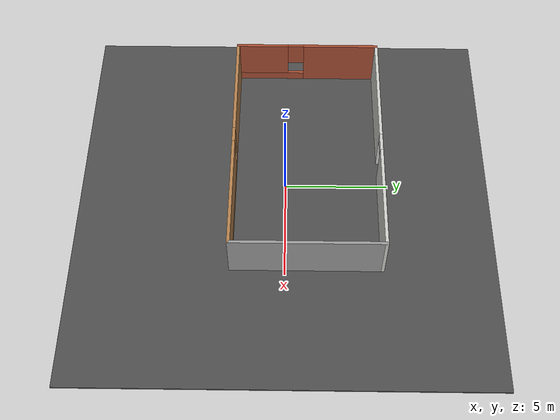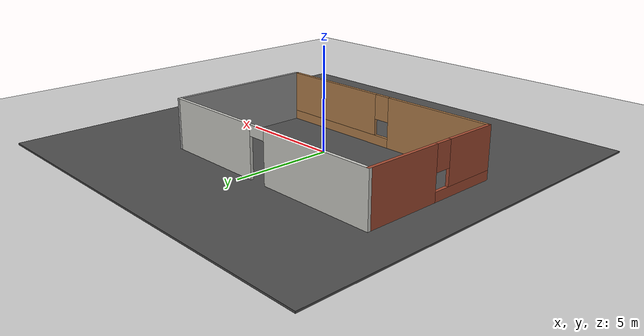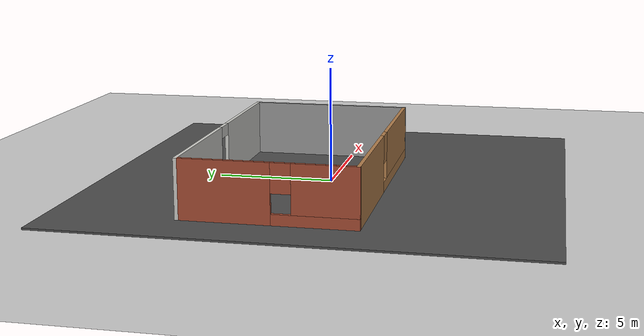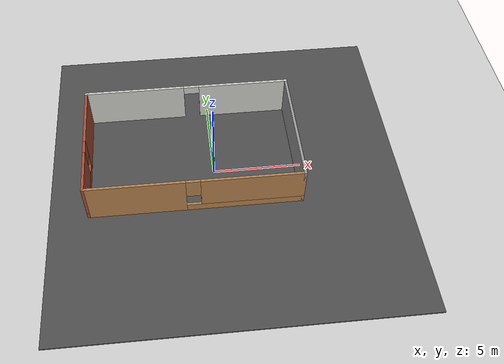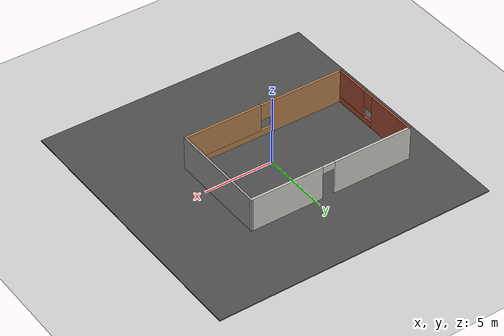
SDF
<sdf version="1.6">
 <world name="default">
  <light name="sun" type="directional">
   <pose>0 0 15 0 -0 0</pose>
   <diffuse>1 1 1 1</diffuse>
   <specular>0.1 0.1 0.1 1</specular>
   <attenuation>
    <range>1000</range>
    <constant>0.9</constant>
    <linear>0.01</linear>
    <quadratic>0.001</quadratic>
   </attenuation>
   <direction>-0.5 0.5 -1</direction>
  </light>
  <model name="ground_plane">
   <static>1</static>
   <link name="link">
    <collision name="collision">
     <geometry><plane><normal>0 0 1</normal><size>100 100</size></plane></geometry>
     <surface><friction><ode><mu>100</mu><mu2>50</mu2></ode></friction></surface>
    </collision>
    <visual name="visual">
     <transparency>1</transparency>
     <cast_shadows>0</cast_shadows>
     <geometry><plane><normal>0 0 1</normal><size>100 100</size></plane></geometry>
     <material>
      <script><uri>file://media/materials/scripts/gazebo.material</uri><name>Gazebo/Grey</name></script>
     </material>
    </visual>
   </link>
  </model>
  <gravity>0 0 -9.8</gravity>
  <magnetic_field>6e-06 2.3e-05 -4.2e-05</magnetic_field>
  <atmosphere type="adiabatic"/>
  <physics name="default_physics" default="0" type="ode">
   <max_step_size>0.001</max_step_size>
   <real_time_factor>1</real_time_factor>
   <real_time_update_rate>1000</real_time_update_rate>
  </physics>
  <scene><ambient>0.4 0.4 0.4 1</ambient><background>0.7 0.7 0.7 1</background><shadows>1</shadows></scene>
  <spherical_coordinates>
   <surface_model>EARTH_WGS84</surface_model>
   <latitude_deg>0</latitude_deg>
   <longitude_deg>0</longitude_deg>
   <elevation>0</elevation>
   <heading_deg>0</heading_deg>
  </spherical_coordinates>
  <model name="asphalt_plane">
   <static>1</static>
   <link name="link">
    <collision name="collision"><geometry><box><size>20 20 0.1</size></box></geometry></collision>
    <visual name="visual">
     <cast_shadows>0</cast_shadows>
     <geometry><box><size>20 20 0.1</size></box></geometry>
     <material>
      <script>
       <uri>model://asphalt_plane/materials/scripts</uri>
       <uri>model://asphalt_plane/materials/textures</uri>
       <name>vrc/asphalt</name>
      </script>
     </material>
    </visual>
   </link>
   <pose>0.701578 -0.058367 0 0 -0 0</pose>
  </model>
  <model name="singleRoom">
   <pose>-1.18952 1.03266 0 0 -0 0</pose>
   <link name="Wall_10">
    <pose>-5.925 0 0 0 0 -1.5708</pose>
    <visual name="Wall_10_Visual_0">
     <pose>-1.72626 0 1.25 0 -0 0</pose>
     <geometry><box><size>3.79747 0.15 2.5</size></box></geometry>
     <material>
      <script><uri>file://media/materials/scripts/gazebo.material</uri><name>Gazebo/Bricks</name></script>
      <ambient>1 1 1 1</ambient>
     </material>
     <meta><layer>0</layer></meta>
    </visual>
    <collision name="Wall_10_Collision_0">
     <geometry><box><size>3.79747 0.15 2.5</size></box></geometry>
     <pose>-1.72626 0 1.25 0 -0 0</pose>
    </collision>
    <visual name="Wall_10_Visual_1">
     <pose>1.89874 0 0.25 0 -0 0</pose>
     <geometry><box><size>3.45253 0.15 0.5</size></box></geometry>
     <material>
      <script><uri>file://media/materials/scripts/gazebo.material</uri><name>Gazebo/Bricks</name></script>
      <ambient>1 1 1 1</ambient>
     </material>
     <meta><layer>0</layer></meta>
    </visual>
    <collision name="Wall_10_Collision_1">
     <geometry><box><size>3.45253 0.15 0.5</size></box></geometry>
     <pose>1.89874 0 0.25 0 -0 0</pose>
    </collision>
    <visual name="Wall_10_Visual_2">
     <pose>2.29874 0 1.5 0 -0 0</pose>
     <geometry><box><size>2.65253 0.15 2</size></box></geometry>
     <material>
      <script><uri>file://media/materials/scripts/gazebo.material</uri><name>Gazebo/Bricks</name></script>
      <ambient>1 1 1 1</ambient>
     </material>
     <meta><layer>0</layer></meta>
    </visual>
    <collision name="Wall_10_Collision_2">
     <geometry><box><size>2.65253 0.15 2</size></box></geometry>
     <pose>2.29874 0 1.5 0 -0 0</pose>
    </collision>
    <visual name="Wall_10_Visual_3">
     <pose>0.57247 0 1.9 0 -0 0</pose>
     <geometry><box><size>0.8 0.15 1.2</size></box></geometry>
     <material>
      <script><uri>file://media/materials/scripts/gazebo.material</uri><name>Gazebo/Bricks</name></script>
      <ambient>1 1 1 1</ambient>
     </material>
     <meta><layer>0</layer></meta>
    </visual>
    <collision name="Wall_10_Collision_3">
     <geometry><box><size>0.8 0.15 1.2</size></box></geometry>
     <pose>0.57247 0 1.9 0 -0 0</pose>
    </collision>
   </link>
   <link name="Wall_7">
    <pose>0 -3.55 0 0 -0 0</pose>
    <visual name="Wall_7_Visual_0">
     <pose>-3.25475 0 1.25 0 -0 0</pose>
     <geometry><box><size>5.49049 0.15 2.5</size></box></geometry>
     <material>
      <script><uri>file://media/materials/scripts/gazebo.material</uri><name>Gazebo/Wood</name></script>
      <ambient>1 1 1 1</ambient>
     </material>
     <meta><layer>0</layer></meta>
    </visual>
    <collision name="Wall_7_Collision_0">
     <geometry><box><size>5.49049 0.15 2.5</size></box></geometry>
     <pose>-3.25475 0 1.25 0 -0 0</pose>
    </collision>
    <visual name="Wall_7_Visual_1">
     <pose>2.74525 0 0.25 0 -0 0</pose>
     <geometry><box><size>6.50951 0.15 0.5</size></box></geometry>
     <material>
      <script><uri>file://media/materials/scripts/gazebo.material</uri><name>Gazebo/Wood</name></script>
      <ambient>1 1 1 1</ambient>
     </material>
     <meta><layer>0</layer></meta>
    </visual>
    <collision name="Wall_7_Collision_1">
     <geometry><box><size>6.50951 0.15 0.5</size></box></geometry>
     <pose>2.74525 0 0.25 0 -0 0</pose>
    </collision>
    <visual name="Wall_7_Visual_2">
     <pose>3.14525 0 1.5 0 -0 0</pose>
     <geometry><box><size>5.70951 0.15 2</size></box></geometry>
     <material>
      <script><uri>file://media/materials/scripts/gazebo.material</uri><name>Gazebo/Wood</name></script>
      <ambient>1 1 1 1</ambient>
     </material>
     <meta><layer>0</layer></meta>
    </visual>
    <collision name="Wall_7_Collision_2">
     <geometry><box><size>5.70951 0.15 2</size></box></geometry>
     <pose>3.14525 0 1.5 0 -0 0</pose>
    </collision>
    <visual name="Wall_7_Visual_3">
     <pose>-0.109511 0 1.9 0 -0 0</pose>
     <geometry><box><size>0.8 0.15 1.2</size></box></geometry>
     <material>
      <script><uri>file://media/materials/scripts/gazebo.material</uri><name>Gazebo/Wood</name></script>
      <ambient>1 1 1 1</ambient>
     </material>
     <meta><layer>0</layer></meta>
    </visual>
    <collision name="Wall_7_Collision_3">
     <geometry><box><size>0.8 0.15 1.2</size></box></geometry>
     <pose>-0.109511 0 1.9 0 -0 0</pose>
    </collision>
   </link>
   <link name="Wall_8">
    <collision name="Wall_8_Collision">
     <geometry><box><size>7.25 0.15 2.5</size></box></geometry>
     <pose>0 0 1.25 0 -0 0</pose>
    </collision>
    <visual name="Wall_8_Visual">
     <pose>0 0 1.25 0 -0 0</pose>
     <geometry><box><size>7.25 0.15 2.5</size></box></geometry>
     <material>
      <script><uri>file://media/materials/scripts/gazebo.material</uri><name>Gazebo/Grey</name></script>
      <ambient>1 1 1 1</ambient>
     </material>
     <meta><layer>0</layer></meta>
    </visual>
    <pose>5.925 0 0 0 -0 1.5708</pose>
   </link>
   <link name="Wall_9">
    <pose>0 3.55 0 0 -0 3.14159</pose>
    <visual name="Wall_9_Visual_0">
     <pose>-3.35634 0 1.25 0 -0 0</pose>
     <geometry><box><size>5.28732 0.15 2.5</size></box></geometry>
     <material>
      <script><uri>file://media/materials/scripts/gazebo.material</uri><name>Gazebo/CeilingTiled</name></script>
      <ambient>1 1 1 1</ambient>
     </material>
     <meta><layer>0</layer></meta>
    </visual>
    <collision name="Wall_9_Collision_0">
     <geometry><box><size>5.28732 0.15 2.5</size></box></geometry>
     <pose>-3.35634 0 1.25 0 -0 0</pose>
    </collision>
    <visual name="Wall_9_Visual_1">
     <pose>3.09366 0 1.25 0 -0 0</pose>
     <geometry><box><size>5.81268 0.15 2.5</size></box></geometry>
     <material>
      <script><uri>file://media/materials/scripts/gazebo.material</uri><name>Gazebo/CeilingTiled</name></script>
      <ambient>1 1 1 1</ambient>
     </material>
     <meta><layer>0</layer></meta>
    </visual>
    <collision name="Wall_9_Collision_1">
     <geometry><box><size>5.81268 0.15 2.5</size></box></geometry>
     <pose>3.09366 0 1.25 0 -0 0</pose>
    </collision>
    <visual name="Wall_9_Visual_2">
     <pose>-0.262681 0 2.25 0 -0 0</pose>
     <geometry><box><size>0.9 0.15 0.5</size></box></geometry>
     <material>
      <script><uri>file://media/materials/scripts/gazebo.material</uri><name>Gazebo/CeilingTiled</name></script>
      <ambient>1 1 1 1</ambient>
     </material>
     <meta><layer>0</layer></meta>
    </visual>
    <collision name="Wall_9_Collision_2">
     <geometry><box><size>0.9 0.15 0.5</size></box></geometry>
     <pose>-0.262681 0 2.25 0 -0 0</pose>
    </collision>
   </link>
   <static>1</static>
  </model>
 </world>
</sdf>
